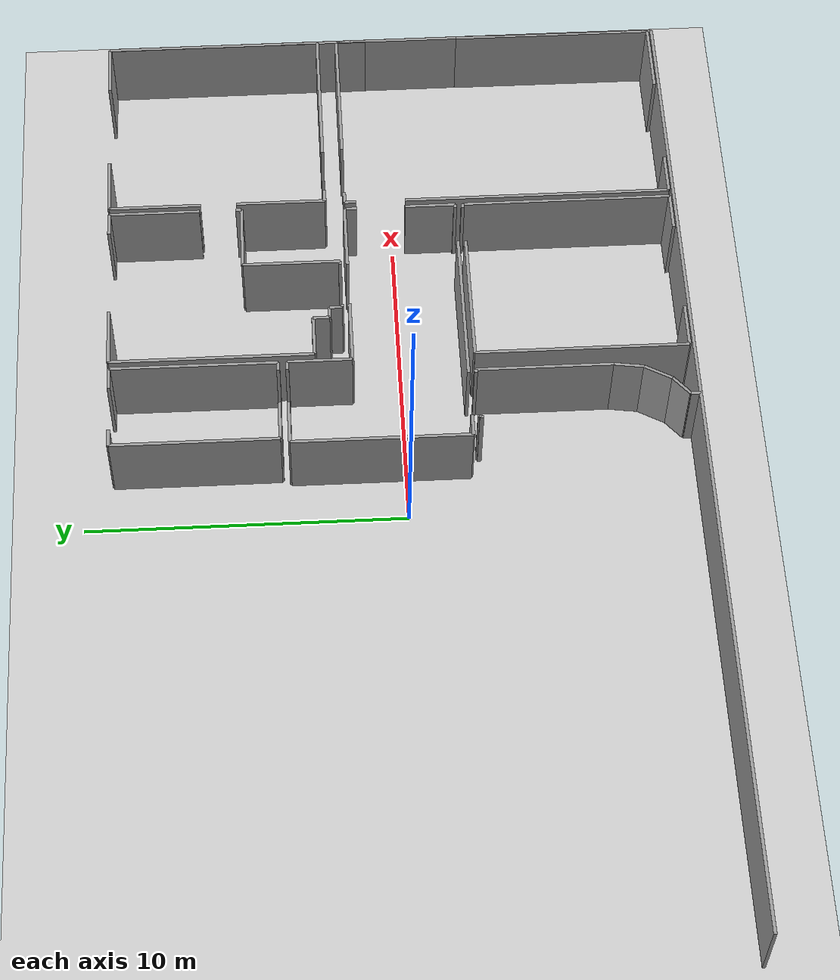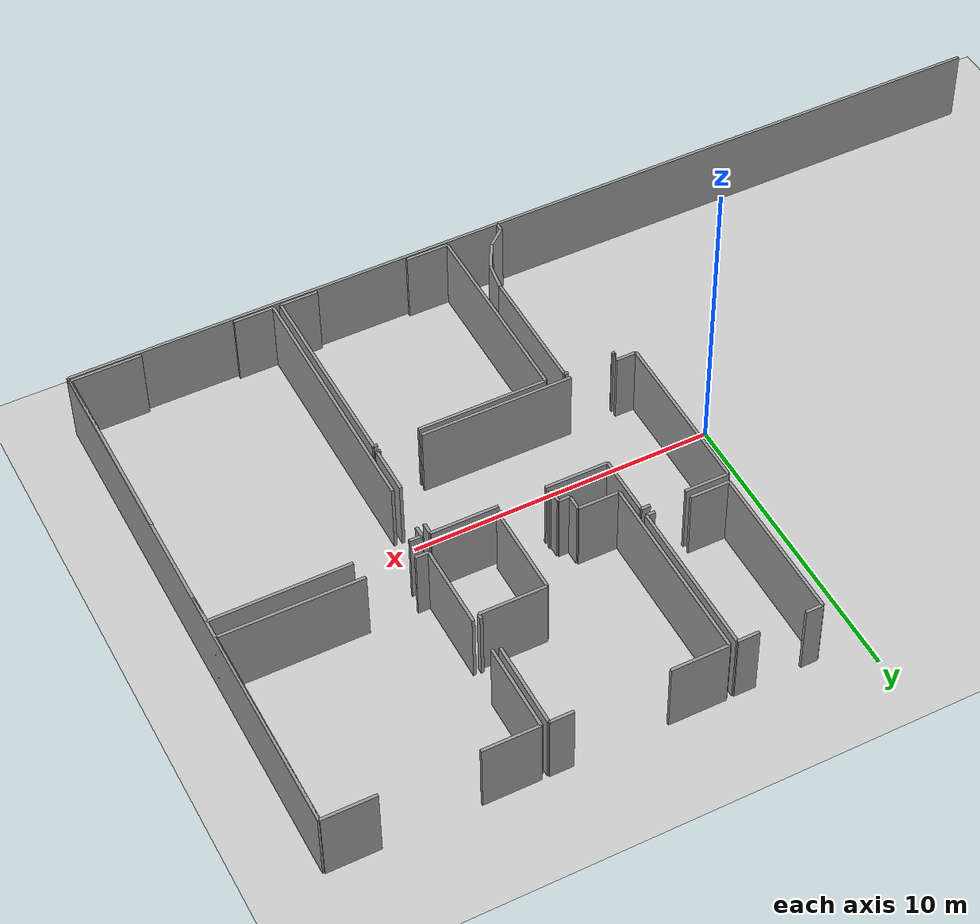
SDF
<sdf version="1.6">
 <world name="default">
  <model name="ground_plane">
   <static>1</static>
   <link name="link">
    <collision name="collision">
     <geometry><plane><normal>0 0 1</normal><size>100 100</size></plane></geometry>
     <surface><friction><ode><mu>100</mu><mu2>50</mu2></ode></friction></surface>
    </collision>
    <visual name="visual">
     <cast_shadows>0</cast_shadows>
     <geometry><plane><normal>0 0 1</normal><size>100 100</size></plane></geometry>
     <material>
      <script><uri>file://media/materials/scripts/gazebo.material</uri><name>Gazebo/Grey</name></script>
     </material>
    </visual>
   </link>
  </model>
  <model name="0510034860_A-40">
   <static>1</static>
   <link name="Wall_60">
    <collision name="Wall_60_Collision">
     <geometry><box><size>0.126208599707 0.1 2.5</size></box></geometry>
     <pose>0.0631042998534 0 1.25 0 0 0</pose>
    </collision>
    <visual name="Wall_60_Visual">
     <pose>0.0631042998534 0 1.25 0 0 0</pose>
     <geometry><box><size>0.126208599707 0.1 2.5</size></box></geometry>
     <material>
      <script><uri>file://media/materials/scripts/gazebo.material</uri><name>Gazebo/Grey</name></script>
      <ambient>1 1 1 1</ambient>
     </material>
    </visual>
    <pose>17.0286381787 -11.4423205114 0 0 0 1.57079632679</pose>
   </link>
   <link name="Wall_61">
    <collision name="Wall_61_Collision">
     <geometry><box><size>0.0822768336116 0.1 2.5</size></box></geometry>
     <pose>0.0411384168058 0 1.25 0 0 0</pose>
    </collision>
    <visual name="Wall_61_Visual">
     <pose>0.0411384168058 0 1.25 0 0 0</pose>
     <geometry><box><size>0.0822768336116 0.1 2.5</size></box></geometry>
     <material>
      <script><uri>file://media/materials/scripts/gazebo.material</uri><name>Gazebo/Grey</name></script>
      <ambient>1 1 1 1</ambient>
     </material>
    </visual>
    <pose>17.0286381787 -11.3161119117 0 0 0 0.0</pose>
   </link>
   <link name="Wall_62">
    <collision name="Wall_62_Collision">
     <geometry><box><size>0.12074887155 0.1 2.5</size></box></geometry>
     <pose>0.0603744357752 0 1.25 0 0 0</pose>
    </collision>
    <visual name="Wall_62_Visual">
     <pose>0.0603744357752 0 1.25 0 0 0</pose>
     <geometry><box><size>0.12074887155 0.1 2.5</size></box></geometry>
     <material>
      <script><uri>file://media/materials/scripts/gazebo.material</uri><name>Gazebo/Grey</name></script>
      <ambient>1 1 1 1</ambient>
     </material>
    </visual>
    <pose>18.648018944 -11.3161119117 0 0 0 0.0</pose>
   </link>
   <link name="Wall_63">
    <collision name="Wall_63_Collision">
     <geometry><box><size>4.26290495629 0.1 2.5</size></box></geometry>
     <pose>2.13145247815 0 1.25 0 0 0</pose>
    </collision>
    <visual name="Wall_63_Visual">
     <pose>2.13145247815 0 1.25 0 0 0</pose>
     <geometry><box><size>4.26290495629 0.1 2.5</size></box></geometry>
     <material>
      <script><uri>file://media/materials/scripts/gazebo.material</uri><name>Gazebo/Grey</name></script>
      <ambient>1 1 1 1</ambient>
     </material>
    </visual>
    <pose>18.7687678155 -11.3161119117 0 0 0 -1.57079632679</pose>
   </link>
   <link name="Wall_64">
    <collision name="Wall_64_Collision">
     <geometry><box><size>0.931540047163 0.1 2.5</size></box></geometry>
     <pose>0.465770023581 0 1.25 0 0 0</pose>
    </collision>
    <visual name="Wall_64_Visual">
     <pose>0.465770023581 0 1.25 0 0 0</pose>
     <geometry><box><size>0.931540047163 0.1 2.5</size></box></geometry>
     <material>
      <script><uri>file://media/materials/scripts/gazebo.material</uri><name>Gazebo/Grey</name></script>
      <ambient>1 1 1 1</ambient>
     </material>
    </visual>
    <pose>18.7687678155 -15.579016868 0 0 0 -1.71454387468</pose>
   </link>
   <link name="Wall_65">
    <collision name="Wall_65_Collision">
     <geometry><box><size>0.965415979738 0.1 2.5</size></box></geometry>
     <pose>0.482707989869 0 1.25 0 0 0</pose>
    </collision>
    <visual name="Wall_65_Visual">
     <pose>0.482707989869 0 1.25 0 0 0</pose>
     <geometry><box><size>0.965415979738 0.1 2.5</size></box></geometry>
     <material>
      <script><uri>file://media/materials/scripts/gazebo.material</uri><name>Gazebo/Grey</name></script>
      <ambient>1 1 1 1</ambient>
     </material>
    </visual>
    <pose>18.6353219018 -16.5009491039 0 0 0 -2.08157382126</pose>
   </link>
   <link name="Wall_66">
    <collision name="Wall_66_Collision">
     <geometry><box><size>0.767753355208 0.1 2.5</size></box></geometry>
     <pose>0.383876677604 0 1.25 0 0 0</pose>
    </collision>
    <visual name="Wall_66_Visual">
     <pose>0.383876677604 0 1.25 0 0 0</pose>
     <geometry><box><size>0.767753355208 0.1 2.5</size></box></geometry>
     <material>
      <script><uri>file://media/materials/scripts/gazebo.material</uri><name>Gazebo/Grey</name></script>
      <ambient>1 1 1 1</ambient>
     </material>
    </visual>
    <pose>18.1633728423 -17.3431439146 0 0 0 -2.44319115743</pose>
   </link>
   <link name="Wall_67">
    <collision name="Wall_67_Collision">
     <geometry><box><size>0.301167043313 0.1 2.5</size></box></geometry>
     <pose>0.150583521657 0 1.25 0 0 0</pose>
    </collision>
    <visual name="Wall_67_Visual">
     <pose>0.150583521657 0 1.25 0 0 0</pose>
     <geometry><box><size>0.301167043313 0.1 2.5</size></box></geometry>
     <material>
      <script><uri>file://media/materials/scripts/gazebo.material</uri><name>Gazebo/Grey</name></script>
      <ambient>1 1 1 1</ambient>
     </material>
    </visual>
    <pose>17.5753728169 -17.8368049163 0 0 0 -1.59904692776</pose>
   </link>
   <link name="Wall_68">
    <collision name="Wall_68_Collision">
     <geometry><box><size>0.115289143394 0.1 2.5</size></box></geometry>
     <pose>0.057644571697 0 1.25 0 0 0</pose>
    </collision>
    <visual name="Wall_68_Visual">
     <pose>0.057644571697 0 1.25 0 0 0</pose>
     <geometry><box><size>0.115289143394 0.1 2.5</size></box></geometry>
     <material>
      <script><uri>file://media/materials/scripts/gazebo.material</uri><name>Gazebo/Grey</name></script>
      <ambient>1 1 1 1</ambient>
     </material>
    </visual>
    <pose>25.1637601021 -11.0909933531 0 0 0 3.14159265359</pose>
   </link>
   <link name="Wall_69">
    <collision name="Wall_69_Collision">
     <geometry><box><size>5.0342502714 0.1 2.5</size></box></geometry>
     <pose>2.5171251357 0 1.25 0 0 0</pose>
    </collision>
    <visual name="Wall_69_Visual">
     <pose>2.5171251357 0 1.25 0 0 0</pose>
     <geometry><box><size>5.0342502714 0.1 2.5</size></box></geometry>
     <material>
      <script><uri>file://media/materials/scripts/gazebo.material</uri><name>Gazebo/Grey</name></script>
      <ambient>1 1 1 1</ambient>
     </material>
    </visual>
    <pose>23.7061396548 -11.0909933531 0 0 0 3.14159265359</pose>
   </link>
   <link name="Wall_70">
    <collision name="Wall_70_Collision">
     <geometry><box><size>0.691226978675 0.1 2.5</size></box></geometry>
     <pose>0.345613489338 0 1.25 0 0 0</pose>
    </collision>
    <visual name="Wall_70_Visual">
     <pose>0.345613489338 0 1.25 0 0 0</pose>
     <geometry><box><size>0.691226978675 0.1 2.5</size></box></geometry>
     <material>
      <script><uri>file://media/materials/scripts/gazebo.material</uri><name>Gazebo/Grey</name></script>
      <ambient>1 1 1 1</ambient>
     </material>
    </visual>
    <pose>17.1007573786 -11.0909933531 0 0 0 3.14159265359</pose>
   </link>
   <link name="Wall_71">
    <collision name="Wall_71_Collision">
     <geometry><box><size>5.57387456592 0.1 2.5</size></box></geometry>
     <pose>2.78693728296 0 1.25 0 0 0</pose>
    </collision>
    <visual name="Wall_71_Visual">
     <pose>2.78693728296 0 1.25 0 0 0</pose>
     <geometry><box><size>5.57387456592 0.1 2.5</size></box></geometry>
     <material>
      <script><uri>file://media/materials/scripts/gazebo.material</uri><name>Gazebo/Grey</name></script>
      <ambient>1 1 1 1</ambient>
     </material>
    </visual>
    <pose>16.4095303999 -11.0909933531 0 0 0 1.57079632679</pose>
   </link>
   <link name="Wall_72">
    <collision name="Wall_72_Collision">
     <geometry><box><size>1.44962131072 0.1 2.5</size></box></geometry>
     <pose>0.724810655358 0 1.25 0 0 0</pose>
    </collision>
    <visual name="Wall_72_Visual">
     <pose>0.724810655358 0 1.25 0 0 0</pose>
     <geometry><box><size>1.44962131072 0.1 2.5</size></box></geometry>
     <material>
      <script><uri>file://media/materials/scripts/gazebo.material</uri><name>Gazebo/Grey</name></script>
      <ambient>1 1 1 1</ambient>
     </material>
    </visual>
    <pose>16.4095303999 -5.51711878718 0 0 0 0.0</pose>
   </link>
   <link name="Wall_73">
    <collision name="Wall_73_Collision">
     <geometry><box><size>0.290889237352 0.1 2.5</size></box></geometry>
     <pose>0.145444618676 0 1.25 0 0 0</pose>
    </collision>
    <visual name="Wall_73_Visual">
     <pose>0.145444618676 0 1.25 0 0 0</pose>
     <geometry><box><size>0.290889237352 0.1 2.5</size></box></geometry>
     <material>
      <script><uri>file://media/materials/scripts/gazebo.material</uri><name>Gazebo/Grey</name></script>
      <ambient>1 1 1 1</ambient>
     </material>
    </visual>
    <pose>19.0487375966 -5.51711878718 0 0 0 0.0</pose>
   </link>
   <link name="Wall_74">
    <collision name="Wall_74_Collision">
     <geometry><box><size>2.02238488544 0.1 2.5</size></box></geometry>
     <pose>1.01119244272 0 1.25 0 0 0</pose>
    </collision>
    <visual name="Wall_74_Visual">
     <pose>1.01119244272 0 1.25 0 0 0</pose>
     <geometry><box><size>2.02238488544 0.1 2.5</size></box></geometry>
     <material>
      <script><uri>file://media/materials/scripts/gazebo.material</uri><name>Gazebo/Grey</name></script>
      <ambient>1 1 1 1</ambient>
     </material>
    </visual>
    <pose>19.3396268339 -5.51711878718 0 0 0 -1.57079632679</pose>
   </link>
   <link name="Wall_75">
    <collision name="Wall_75_Collision">
     <geometry><box><size>2.0804103684 0.1 2.5</size></box></geometry>
     <pose>1.0402051842 0 1.25 0 0 0</pose>
    </collision>
    <visual name="Wall_75_Visual">
     <pose>1.0402051842 0 1.25 0 0 0</pose>
     <geometry><box><size>2.0804103684 0.1 2.5</size></box></geometry>
     <material>
      <script><uri>file://media/materials/scripts/gazebo.material</uri><name>Gazebo/Grey</name></script>
      <ambient>1 1 1 1</ambient>
     </material>
    </visual>
    <pose>19.3396268339 -7.53950367262 0 0 0 0.0</pose>
   </link>
   <link name="Wall_76">
    <collision name="Wall_76_Collision">
     <geometry><box><size>2.19963559489 0.1 2.5</size></box></geometry>
     <pose>1.09981779744 0 1.25 0 0 0</pose>
    </collision>
    <visual name="Wall_76_Visual">
     <pose>1.09981779744 0 1.25 0 0 0</pose>
     <geometry><box><size>2.19963559489 0.1 2.5</size></box></geometry>
     <material>
      <script><uri>file://media/materials/scripts/gazebo.material</uri><name>Gazebo/Grey</name></script>
      <ambient>1 1 1 1</ambient>
     </material>
    </visual>
    <pose>22.96196601 -7.53950367262 0 0 0 0.0</pose>
   </link>
   <link name="Wall_77">
    <collision name="Wall_77_Collision">
     <geometry><box><size>0.387894639944 0.1 2.5</size></box></geometry>
     <pose>0.193947319972 0 1.25 0 0 0</pose>
    </collision>
    <visual name="Wall_77_Visual">
     <pose>0.193947319972 0 1.25 0 0 0</pose>
     <geometry><box><size>0.387894639944 0.1 2.5</size></box></geometry>
     <material>
      <script><uri>file://media/materials/scripts/gazebo.material</uri><name>Gazebo/Grey</name></script>
      <ambient>1 1 1 1</ambient>
     </material>
    </visual>
    <pose>25.1616016049 -7.53950367262 0 0 0 -1.57079632679</pose>
   </link>
   <link name="Wall_78">
    <collision name="Wall_78_Collision">
     <geometry><box><size>1.60160636065 0.1 2.5</size></box></geometry>
     <pose>0.800803180325 0 1.25 0 0 0</pose>
    </collision>
    <visual name="Wall_78_Visual">
     <pose>0.800803180325 0 1.25 0 0 0</pose>
     <geometry><box><size>1.60160636065 0.1 2.5</size></box></geometry>
     <material>
      <script><uri>file://media/materials/scripts/gazebo.material</uri><name>Gazebo/Grey</name></script>
      <ambient>1 1 1 1</ambient>
     </material>
    </visual>
    <pose>25.1616016049 -9.48938844696 0 0 0 -1.56944861872</pose>
   </link>
   <link name="Wall_79">
    <collision name="Wall_79_Collision">
     <geometry><box><size>1.2468495464 0.1 2.5</size></box></geometry>
     <pose>0.623424773199 0 1.25 0 0 0</pose>
    </collision>
    <visual name="Wall_79_Visual">
     <pose>0.623424773199 0 1.25 0 0 0</pose>
     <geometry><box><size>1.2468495464 0.1 2.5</size></box></geometry>
     <material>
      <script><uri>file://media/materials/scripts/gazebo.material</uri><name>Gazebo/Grey</name></script>
      <ambient>1 1 1 1</ambient>
     </material>
    </visual>
    <pose>25.1754413809 -18.0047867849 0 0 0 3.14159265359</pose>
   </link>
   <link name="Wall_80">
    <collision name="Wall_80_Collision">
     <geometry><box><size>1.43819397271 0.1 2.5</size></box></geometry>
     <pose>0.719096986357 0 1.25 0 0 0</pose>
    </collision>
    <visual name="Wall_80_Visual">
     <pose>0.719096986357 0 1.25 0 0 0</pose>
     <geometry><box><size>1.43819397271 0.1 2.5</size></box></geometry>
     <material>
      <script><uri>file://media/materials/scripts/gazebo.material</uri><name>Gazebo/Grey</name></script>
      <ambient>1 1 1 1</ambient>
     </material>
    </visual>
    <pose>20.8381317572 -18.0047867849 0 0 0 3.14159265359</pose>
   </link>
   <link name="Wall_81">
    <collision name="Wall_81_Collision">
     <geometry><box><size>6.67191477745 0.1 2.5</size></box></geometry>
     <pose>3.33595738873 0 1.25 0 0 0</pose>
    </collision>
    <visual name="Wall_81_Visual">
     <pose>3.33595738873 0 1.25 0 0 0</pose>
     <geometry><box><size>6.67191477745 0.1 2.5</size></box></geometry>
     <material>
      <script><uri>file://media/materials/scripts/gazebo.material</uri><name>Gazebo/Grey</name></script>
      <ambient>1 1 1 1</ambient>
     </material>
    </visual>
    <pose>19.3999377845 -18.0047867849 0 0 0 1.57079632679</pose>
   </link>
   <link name="Wall_82">
    <collision name="Wall_82_Collision">
     <geometry><box><size>4.28867995201 0.1 2.5</size></box></geometry>
     <pose>2.144339976 0 1.25 0 0 0</pose>
    </collision>
    <visual name="Wall_82_Visual">
     <pose>2.144339976 0 1.25 0 0 0</pose>
     <geometry><box><size>4.28867995201 0.1 2.5</size></box></geometry>
     <material>
      <script><uri>file://media/materials/scripts/gazebo.material</uri><name>Gazebo/Grey</name></script>
      <ambient>1 1 1 1</ambient>
     </material>
    </visual>
    <pose>19.3999377845 -11.3328720075 0 0 0 0.0</pose>
   </link>
   <link name="Wall_83">
    <collision name="Wall_83_Collision">
     <geometry><box><size>0.126335570129 0.1 2.5</size></box></geometry>
     <pose>0.0631677850645 0 1.25 0 0 0</pose>
    </collision>
    <visual name="Wall_83_Visual">
     <pose>0.0631677850645 0 1.25 0 0 0</pose>
     <geometry><box><size>0.126335570129 0.1 2.5</size></box></geometry>
     <material>
      <script><uri>file://media/materials/scripts/gazebo.material</uri><name>Gazebo/Grey</name></script>
      <ambient>1 1 1 1</ambient>
     </material>
    </visual>
    <pose>25.037424532 -11.3328720075 0 0 0 0.0</pose>
   </link>
   <link name="Wall_84">
    <collision name="Wall_84_Collision">
     <geometry><box><size>6.67192500332 0.1 2.5</size></box></geometry>
     <pose>3.33596250166 0 1.25 0 0 0</pose>
    </collision>
    <visual name="Wall_84_Visual">
     <pose>3.33596250166 0 1.25 0 0 0</pose>
     <geometry><box><size>6.67192500332 0.1 2.5</size></box></geometry>
     <material>
      <script><uri>file://media/materials/scripts/gazebo.material</uri><name>Gazebo/Grey</name></script>
      <ambient>1 1 1 1</ambient>
     </material>
    </visual>
    <pose>25.1637601021 -11.3328720075 0 0 0 -1.56904551503</pose>
   </link>
   <link name="Wall_85">
    <collision name="Wall_85_Collision">
     <geometry><box><size>2.31035380308 0.1 2.5</size></box></geometry>
     <pose>1.15517690154 0 1.25 0 0 0</pose>
    </collision>
    <visual name="Wall_85_Visual">
     <pose>1.15517690154 0 1.25 0 0 0</pose>
     <geometry><box><size>2.31035380308 0.1 2.5</size></box></geometry>
     <material>
      <script><uri>file://media/materials/scripts/gazebo.material</uri><name>Gazebo/Grey</name></script>
      <ambient>1 1 1 1</ambient>
     </material>
    </visual>
    <pose>32.1364678098 -18.0052946666 0 0 0 3.14159265359</pose>
   </link>
   <link name="Wall_86">
    <collision name="Wall_86_Collision">
     <geometry><box><size>1.34461677152 0.1 2.5</size></box></geometry>
     <pose>0.672308385762 0 1.25 0 0 0</pose>
    </collision>
    <visual name="Wall_86_Visual">
     <pose>0.672308385762 0 1.25 0 0 0</pose>
     <geometry><box><size>1.34461677152 0.1 2.5</size></box></geometry>
     <material>
      <script><uri>file://media/materials/scripts/gazebo.material</uri><name>Gazebo/Grey</name></script>
      <ambient>1 1 1 1</ambient>
     </material>
    </visual>
    <pose>26.7644762153 -18.0052946666 0 0 0 3.14159265359</pose>
   </link>
   <link name="Wall_87">
    <collision name="Wall_87_Collision">
     <geometry><box><size>8.5076531422 0.1 2.5</size></box></geometry>
     <pose>4.2538265711 0 1.25 0 0 0</pose>
    </collision>
    <visual name="Wall_87_Visual">
     <pose>4.2538265711 0 1.25 0 0 0</pose>
     <geometry><box><size>8.5076531422 0.1 2.5</size></box></geometry>
     <material>
      <script><uri>file://media/materials/scripts/gazebo.material</uri><name>Gazebo/Grey</name></script>
      <ambient>1 1 1 1</ambient>
     </material>
    </visual>
    <pose>25.4198594437 -18.0052946666 0 0 0 1.57079632679</pose>
   </link>
   <link name="Wall_88">
    <collision name="Wall_88_Collision">
     <geometry><box><size>0.363008437185 0.1 2.5</size></box></geometry>
     <pose>0.181504218592 0 1.25 0 0 0</pose>
    </collision>
    <visual name="Wall_88_Visual">
     <pose>0.181504218592 0 1.25 0 0 0</pose>
     <geometry><box><size>0.363008437185 0.1 2.5</size></box></geometry>
     <material>
      <script><uri>file://media/materials/scripts/gazebo.material</uri><name>Gazebo/Grey</name></script>
      <ambient>1 1 1 1</ambient>
     </material>
    </visual>
    <pose>25.4198594437 -7.9201609985 0 0 0 1.57079632679</pose>
   </link>
   <link name="Wall_89">
    <collision name="Wall_89_Collision">
     <geometry><box><size>0.409606582147 0.1 2.5</size></box></geometry>
     <pose>0.204803291073 0 1.25 0 0 0</pose>
    </collision>
    <visual name="Wall_89_Visual">
     <pose>0.204803291073 0 1.25 0 0 0</pose>
     <geometry><box><size>0.409606582147 0.1 2.5</size></box></geometry>
     <material>
      <script><uri>file://media/materials/scripts/gazebo.material</uri><name>Gazebo/Grey</name></script>
      <ambient>1 1 1 1</ambient>
     </material>
    </visual>
    <pose>25.4198594437 -7.55715256131 0 0 0 0.0</pose>
   </link>
   <link name="Wall_90">
    <collision name="Wall_90_Collision">
     <geometry><box><size>4.54452535282 0.1 2.5</size></box></geometry>
     <pose>2.27226267641 0 1.25 0 0 0</pose>
    </collision>
    <visual name="Wall_90_Visual">
     <pose>2.27226267641 0 1.25 0 0 0</pose>
     <geometry><box><size>4.54452535282 0.1 2.5</size></box></geometry>
     <material>
      <script><uri>file://media/materials/scripts/gazebo.material</uri><name>Gazebo/Grey</name></script>
      <ambient>1 1 1 1</ambient>
     </material>
    </visual>
    <pose>27.6008303866 -7.55715256131 0 0 0 0.0</pose>
   </link>
   <link name="Wall_91">
    <collision name="Wall_91_Collision">
     <geometry><box><size>0.958372747069 0.1 2.5</size></box></geometry>
     <pose>0.479186373534 0 1.25 0 0 0</pose>
    </collision>
    <visual name="Wall_91_Visual">
     <pose>0.479186373534 0 1.25 0 0 0</pose>
     <geometry><box><size>0.958372747069 0.1 2.5</size></box></geometry>
     <material>
      <script><uri>file://media/materials/scripts/gazebo.material</uri><name>Gazebo/Grey</name></script>
      <ambient>1 1 1 1</ambient>
     </material>
    </visual>
    <pose>32.1453557394 -7.55715256131 0 0 0 -1.57079632679</pose>
   </link>
   <link name="Wall_92">
    <collision name="Wall_92_Collision">
     <geometry><box><size>6.43359743419 0.1 2.5</size></box></geometry>
     <pose>3.21679871709 0 1.25 0 0 0</pose>
    </collision>
    <visual name="Wall_92_Visual">
     <pose>3.21679871709 0 1.25 0 0 0</pose>
     <geometry><box><size>6.43359743419 0.1 2.5</size></box></geometry>
     <material>
      <script><uri>file://media/materials/scripts/gazebo.material</uri><name>Gazebo/Grey</name></script>
      <ambient>1 1 1 1</ambient>
     </material>
    </visual>
    <pose>32.1453557394 -11.5717033717 0 0 0 -1.57217781398</pose>
   </link>
   <link name="Wall_93">
    <collision name="Wall_93_Collision">
     <geometry><box><size>4.65181535961 0.1 2.5</size></box></geometry>
     <pose>2.32590767981 0 1.25 0 0 0</pose>
    </collision>
    <visual name="Wall_93_Visual">
     <pose>2.32590767981 0 1.25 0 0 0</pose>
     <geometry><box><size>4.65181535961 0.1 2.5</size></box></geometry>
     <material>
      <script><uri>file://media/materials/scripts/gazebo.material</uri><name>Gazebo/Grey</name></script>
      <ambient>1 1 1 1</ambient>
     </material>
    </visual>
    <pose>32.1547515506 -6.91887224871 0 0 0 3.14159265359</pose>
   </link>
   <link name="Wall_94">
    <collision name="Wall_94_Collision">
     <geometry><box><size>0.434111873639 0.1 2.5</size></box></geometry>
     <pose>0.21705593682 0 1.25 0 0 0</pose>
    </collision>
    <visual name="Wall_94_Visual">
     <pose>0.21705593682 0 1.25 0 0 0</pose>
     <geometry><box><size>0.434111873639 0.1 2.5</size></box></geometry>
     <material>
      <script><uri>file://media/materials/scripts/gazebo.material</uri><name>Gazebo/Grey</name></script>
      <ambient>1 1 1 1</ambient>
     </material>
    </visual>
    <pose>25.9518655129 -6.91887224871 0 0 0 3.14159265359</pose>
   </link>
   <link name="Wall_95">
    <collision name="Wall_95_Collision">
     <geometry><box><size>2.83931258213 0.1 2.5</size></box></geometry>
     <pose>1.41965629107 0 1.25 0 0 0</pose>
    </collision>
    <visual name="Wall_95_Visual">
     <pose>1.41965629107 0 1.25 0 0 0</pose>
     <geometry><box><size>2.83931258213 0.1 2.5</size></box></geometry>
     <material>
      <script><uri>file://media/materials/scripts/gazebo.material</uri><name>Gazebo/Grey</name></script>
      <ambient>1 1 1 1</ambient>
     </material>
    </visual>
    <pose>25.5177536393 -6.91887224871 0 0 0 1.57079632679</pose>
   </link>
   <link name="Wall_96">
    <collision name="Wall_96_Collision">
     <geometry><box><size>2.92197032701 0.1 2.5</size></box></geometry>
     <pose>1.46098516351 0 1.25 0 0 0</pose>
    </collision>
    <visual name="Wall_96_Visual">
     <pose>1.46098516351 0 1.25 0 0 0</pose>
     <geometry><box><size>2.92197032701 0.1 2.5</size></box></geometry>
     <material>
      <script><uri>file://media/materials/scripts/gazebo.material</uri><name>Gazebo/Grey</name></script>
      <ambient>1 1 1 1</ambient>
     </material>
    </visual>
    <pose>25.5177536393 -2.93581010304 0 0 0 1.57079632679</pose>
   </link>
   <link name="Wall_97">
    <collision name="Wall_97_Collision">
     <geometry><box><size>1.84500720557 0.1 2.5</size></box></geometry>
     <pose>0.922503602786 0 1.25 0 0 0</pose>
    </collision>
    <visual name="Wall_97_Visual">
     <pose>0.922503602786 0 1.25 0 0 0</pose>
     <geometry><box><size>1.84500720557 0.1 2.5</size></box></geometry>
     <material>
      <script><uri>file://media/materials/scripts/gazebo.material</uri><name>Gazebo/Grey</name></script>
      <ambient>1 1 1 1</ambient>
     </material>
    </visual>
    <pose>25.5177536393 -0.0138397760242 0 0 0 0.0</pose>
   </link>
   <link name="Wall_98">
    <collision name="Wall_98_Collision">
     <geometry><box><size>1.71968739882 0.1 2.5</size></box></geometry>
     <pose>0.85984369941 0 1.25 0 0 0</pose>
    </collision>
    <visual name="Wall_98_Visual">
     <pose>0.85984369941 0 1.25 0 0 0</pose>
     <geometry><box><size>1.71968739882 0.1 2.5</size></box></geometry>
     <material>
      <script><uri>file://media/materials/scripts/gazebo.material</uri><name>Gazebo/Grey</name></script>
      <ambient>1 1 1 1</ambient>
     </material>
    </visual>
    <pose>30.4266841039 -0.0138397760242 0 0 0 0.0</pose>
   </link>
   <link name="Wall_99">
    <collision name="Wall_99_Collision">
     <geometry><box><size>6.90503755776 0.1 2.5</size></box></geometry>
     <pose>3.45251877888 0 1.25 0 0 0</pose>
    </collision>
    <visual name="Wall_99_Visual">
     <pose>3.45251877888 0 1.25 0 0 0</pose>
     <geometry><box><size>6.90503755776 0.1 2.5</size></box></geometry>
     <material>
      <script><uri>file://media/materials/scripts/gazebo.material</uri><name>Gazebo/Grey</name></script>
      <ambient>1 1 1 1</ambient>
     </material>
    </visual>
    <pose>32.1463715028 -0.0138397760242 0 0 0 -1.56958271284</pose>
   </link>
   <link name="Wall_100">
    <collision name="Wall_100_Collision">
     <geometry><box><size>0.132557120819 0.1 2.5</size></box></geometry>
     <pose>0.0662785604094 0 1.25 0 0 0</pose>
    </collision>
    <visual name="Wall_100_Visual">
     <pose>0.0662785604094 0 1.25 0 0 0</pose>
     <geometry><box><size>0.132557120819 0.1 2.5</size></box></geometry>
     <material>
      <script><uri>file://media/materials/scripts/gazebo.material</uri><name>Gazebo/Grey</name></script>
      <ambient>1 1 1 1</ambient>
     </material>
    </visual>
    <pose>23.0904600773 -7.3115917647 0 0 0 3.14159265359</pose>
   </link>
   <link name="Wall_101">
    <collision name="Wall_101_Collision">
     <geometry><box><size>0.100179663147 0.1 2.5</size></box></geometry>
     <pose>0.0500898315737 0 1.25 0 0 0</pose>
    </collision>
    <visual name="Wall_101_Visual">
     <pose>0.0500898315737 0 1.25 0 0 0</pose>
     <geometry><box><size>0.100179663147 0.1 2.5</size></box></geometry>
     <material>
      <script><uri>file://media/materials/scripts/gazebo.material</uri><name>Gazebo/Grey</name></script>
      <ambient>1 1 1 1</ambient>
     </material>
    </visual>
    <pose>21.4186405277 -7.3115917647 0 0 0 3.14159265359</pose>
   </link>
   <link name="Wall_102">
    <collision name="Wall_102_Collision">
     <geometry><box><size>0.410241434258 0.1 2.5</size></box></geometry>
     <pose>0.205120717129 0 1.25 0 0 0</pose>
    </collision>
    <visual name="Wall_102_Visual">
     <pose>0.205120717129 0 1.25 0 0 0</pose>
     <geometry><box><size>0.410241434258 0.1 2.5</size></box></geometry>
     <material>
      <script><uri>file://media/materials/scripts/gazebo.material</uri><name>Gazebo/Grey</name></script>
      <ambient>1 1 1 1</ambient>
     </material>
    </visual>
    <pose>21.3184608645 -7.3115917647 0 0 0 1.57079632679</pose>
   </link>
   <link name="Wall_103">
    <collision name="Wall_103_Collision">
     <geometry><box><size>0.375705479409 0.1 2.5</size></box></geometry>
     <pose>0.187852739704 0 1.25 0 0 0</pose>
    </collision>
    <visual name="Wall_103_Visual">
     <pose>0.187852739704 0 1.25 0 0 0</pose>
     <geometry><box><size>0.375705479409 0.1 2.5</size></box></geometry>
     <material>
      <script><uri>file://media/materials/scripts/gazebo.material</uri><name>Gazebo/Grey</name></script>
      <ambient>1 1 1 1</ambient>
     </material>
    </visual>
    <pose>21.3184608645 -6.90135033044 0 0 0 3.14159265359</pose>
   </link>
   <link name="Wall_104">
    <collision name="Wall_104_Collision">
     <geometry><box><size>0.517658411473 0.1 2.5</size></box></geometry>
     <pose>0.258829205737 0 1.25 0 0 0</pose>
    </collision>
    <visual name="Wall_104_Visual">
     <pose>0.258829205737 0 1.25 0 0 0</pose>
     <geometry><box><size>0.517658411473 0.1 2.5</size></box></geometry>
     <material>
      <script><uri>file://media/materials/scripts/gazebo.material</uri><name>Gazebo/Grey</name></script>
      <ambient>1 1 1 1</ambient>
     </material>
    </visual>
    <pose>20.9427553851 -6.90135033044 0 0 0 1.57079632679</pose>
   </link>
   <link name="Wall_105">
    <collision name="Wall_105_Collision">
     <geometry><box><size>1.35617107995 0.1 2.5</size></box></geometry>
     <pose>0.678085539973 0 1.25 0 0 0</pose>
    </collision>
    <visual name="Wall_105_Visual">
     <pose>0.678085539973 0 1.25 0 0 0</pose>
     <geometry><box><size>1.35617107995 0.1 2.5</size></box></geometry>
     <material>
      <script><uri>file://media/materials/scripts/gazebo.material</uri><name>Gazebo/Grey</name></script>
      <ambient>1 1 1 1</ambient>
     </material>
    </visual>
    <pose>20.9427553851 -6.38369191897 0 0 0 3.14159265359</pose>
   </link>
   <link name="Wall_106">
    <collision name="Wall_106_Collision">
     <geometry><box><size>6.37581975279 0.1 2.5</size></box></geometry>
     <pose>3.18790987639 0 1.25 0 0 0</pose>
    </collision>
    <visual name="Wall_106_Visual">
     <pose>3.18790987639 0 1.25 0 0 0</pose>
     <geometry><box><size>6.37581975279 0.1 2.5</size></box></geometry>
     <material>
      <script><uri>file://media/materials/scripts/gazebo.material</uri><name>Gazebo/Grey</name></script>
      <ambient>1 1 1 1</ambient>
     </material>
    </visual>
    <pose>19.5865843052 -6.38369191897 0 0 0 1.57079632679</pose>
   </link>
   <link name="Wall_107">
    <collision name="Wall_107_Collision">
     <geometry><box><size>1.89414475898 0.1 2.5</size></box></geometry>
     <pose>0.947072379489 0 1.25 0 0 0</pose>
    </collision>
    <visual name="Wall_107_Visual">
     <pose>0.947072379489 0 1.25 0 0 0</pose>
     <geometry><box><size>1.89414475898 0.1 2.5</size></box></geometry>
     <material>
      <script><uri>file://media/materials/scripts/gazebo.material</uri><name>Gazebo/Grey</name></script>
      <ambient>1 1 1 1</ambient>
     </material>
    </visual>
    <pose>19.5865843052 -0.00787216617889 0 0 0 0.0</pose>
   </link>
   <link name="Wall_108">
    <collision name="Wall_108_Collision">
     <geometry><box><size>0.776424131998 0.1 2.5</size></box></geometry>
     <pose>0.388212065999 0 1.25 0 0 0</pose>
    </collision>
    <visual name="Wall_108_Visual">
     <pose>0.388212065999 0 1.25 0 0 0</pose>
     <geometry><box><size>0.776424131998 0.1 2.5</size></box></geometry>
     <material>
      <script><uri>file://media/materials/scripts/gazebo.material</uri><name>Gazebo/Grey</name></script>
      <ambient>1 1 1 1</ambient>
     </material>
    </visual>
    <pose>24.5045296698 -0.00787216617889 0 0 0 0.0</pose>
   </link>
   <link name="Wall_109">
    <collision name="Wall_109_Collision">
     <geometry><box><size>2.88616466794 0.1 2.5</size></box></geometry>
     <pose>1.44308233397 0 1.25 0 0 0</pose>
    </collision>
    <visual name="Wall_109_Visual">
     <pose>1.44308233397 0 1.25 0 0 0</pose>
     <geometry><box><size>2.88616466794 0.1 2.5</size></box></geometry>
     <material>
      <script><uri>file://media/materials/scripts/gazebo.material</uri><name>Gazebo/Grey</name></script>
      <ambient>1 1 1 1</ambient>
     </material>
    </visual>
    <pose>25.2809538018 -0.00787216617889 0 0 0 -1.57079632679</pose>
   </link>
   <link name="Wall_110">
    <collision name="Wall_110_Collision">
     <geometry><box><size>0.183726200981 0.1 2.5</size></box></geometry>
     <pose>0.0918631004907 0 1.25 0 0 0</pose>
    </collision>
    <visual name="Wall_110_Visual">
     <pose>0.0918631004907 0 1.25 0 0 0</pose>
     <geometry><box><size>0.183726200981 0.1 2.5</size></box></geometry>
     <material>
      <script><uri>file://media/materials/scripts/gazebo.material</uri><name>Gazebo/Grey</name></script>
      <ambient>1 1 1 1</ambient>
     </material>
    </visual>
    <pose>25.2809538018 -4.05441952297 0 0 0 -1.57079632679</pose>
   </link>
   <link name="Wall_111">
    <collision name="Wall_111_Collision">
     <geometry><box><size>2.18414520337 0.1 2.5</size></box></geometry>
     <pose>1.09207260169 0 1.25 0 0 0</pose>
    </collision>
    <visual name="Wall_111_Visual">
     <pose>1.09207260169 0 1.25 0 0 0</pose>
     <geometry><box><size>2.18414520337 0.1 2.5</size></box></geometry>
     <material>
      <script><uri>file://media/materials/scripts/gazebo.material</uri><name>Gazebo/Grey</name></script>
      <ambient>1 1 1 1</ambient>
     </material>
    </visual>
    <pose>25.2809538018 -4.23814572395 0 0 0 3.14159265359</pose>
   </link>
   <link name="Wall_112">
    <collision name="Wall_112_Collision">
     <geometry><box><size>3.0734525975 0.1 2.5</size></box></geometry>
     <pose>1.53672629875 0 1.25 0 0 0</pose>
    </collision>
    <visual name="Wall_112_Visual">
     <pose>1.53672629875 0 1.25 0 0 0</pose>
     <geometry><box><size>3.0734525975 0.1 2.5</size></box></geometry>
     <material>
      <script><uri>file://media/materials/scripts/gazebo.material</uri><name>Gazebo/Grey</name></script>
      <ambient>1 1 1 1</ambient>
     </material>
    </visual>
    <pose>23.0968085984 -4.23814572395 0 0 0 -1.57286192743</pose>
   </link>
   <link name="Wall_113">
    <collision name="Wall_113_Collision">
     <geometry><box><size>0.28225524864 0.1 2.5</size></box></geometry>
     <pose>0.14112762432 0 1.25 0 0 0</pose>
    </collision>
    <visual name="Wall_113_Visual">
     <pose>0.14112762432 0 1.25 0 0 0</pose>
     <geometry><box><size>0.28225524864 0.1 2.5</size></box></geometry>
     <material>
      <script><uri>file://media/materials/scripts/gazebo.material</uri><name>Gazebo/Grey</name></script>
      <ambient>1 1 1 1</ambient>
     </material>
    </visual>
    <pose>19.3257870579 -5.23613324276 0 0 0 3.14159265359</pose>
   </link>
   <link name="Wall_114">
    <collision name="Wall_114_Collision">
     <geometry><box><size>1.3067795857 0.1 2.5</size></box></geometry>
     <pose>0.653389792848 0 1.25 0 0 0</pose>
    </collision>
    <visual name="Wall_114_Visual">
     <pose>0.653389792848 0 1.25 0 0 0</pose>
     <geometry><box><size>1.3067795857 0.1 2.5</size></box></geometry>
     <material>
      <script><uri>file://media/materials/scripts/gazebo.material</uri><name>Gazebo/Grey</name></script>
      <ambient>1 1 1 1</ambient>
     </material>
    </visual>
    <pose>17.8512795444 -5.23613324276 0 0 0 3.14159265359</pose>
   </link>
   <link name="Wall_115">
    <collision name="Wall_115_Collision">
     <geometry><box><size>5.21442130056 0.1 2.5</size></box></geometry>
     <pose>2.60721065028 0 1.25 0 0 0</pose>
    </collision>
    <visual name="Wall_115_Visual">
     <pose>2.60721065028 0 1.25 0 0 0</pose>
     <geometry><box><size>5.21442130056 0.1 2.5</size></box></geometry>
     <material>
      <script><uri>file://media/materials/scripts/gazebo.material</uri><name>Gazebo/Grey</name></script>
      <ambient>1 1 1 1</ambient>
     </material>
    </visual>
    <pose>16.5444999587 -5.23613324276 0 0 0 1.57079632679</pose>
   </link>
   <link name="Wall_116">
    <collision name="Wall_116_Collision">
     <geometry><box><size>0.566288083191 0.1 2.5</size></box></geometry>
     <pose>0.283144041596 0 1.25 0 0 0</pose>
    </collision>
    <visual name="Wall_116_Visual">
     <pose>0.283144041596 0 1.25 0 0 0</pose>
     <geometry><box><size>0.566288083191 0.1 2.5</size></box></geometry>
     <material>
      <script><uri>file://media/materials/scripts/gazebo.material</uri><name>Gazebo/Grey</name></script>
      <ambient>1 1 1 1</ambient>
     </material>
    </visual>
    <pose>16.5444999587 -0.0217119422031 0 0 0 0.0</pose>
   </link>
   <link name="Wall_117">
    <collision name="Wall_117_Collision">
     <geometry><box><size>0.713319832145 0.1 2.5</size></box></geometry>
     <pose>0.356659916073 0 1.25 0 0 0</pose>
    </collision>
    <visual name="Wall_117_Visual">
     <pose>0.356659916073 0 1.25 0 0 0</pose>
     <geometry><box><size>0.713319832145 0.1 2.5</size></box></geometry>
     <material>
      <script><uri>file://media/materials/scripts/gazebo.material</uri><name>Gazebo/Grey</name></script>
      <ambient>1 1 1 1</ambient>
     </material>
    </visual>
    <pose>18.6211012145 -0.0217119422031 0 0 0 0.0</pose>
   </link>
   <link name="Wall_118">
    <collision name="Wall_118_Collision">
     <geometry><box><size>5.21442844859 0.1 2.5</size></box></geometry>
     <pose>2.6072142243 0 1.25 0 0 0</pose>
    </collision>
    <visual name="Wall_118_Visual">
     <pose>2.6072142243 0 1.25 0 0 0</pose>
     <geometry><box><size>5.21442844859 0.1 2.5</size></box></geometry>
     <material>
      <script><uri>file://media/materials/scripts/gazebo.material</uri><name>Gazebo/Grey</name></script>
      <ambient>1 1 1 1</ambient>
     </material>
    </visual>
    <pose>19.3344210466 -0.0217119422031 0 0 0 -1.57245211568</pose>
   </link>
   <link name="Wall_119">
    <collision name="Wall_119_Collision">
     <geometry><box><size>18.1378517874 0.1 2.5</size></box></geometry>
     <pose>9.06892589371 0 1.25 0 0 0</pose>
    </collision>
    <visual name="Wall_119_Visual">
     <pose>9.06892589371 0 1.25 0 0 0</pose>
     <geometry><box><size>18.1378517874 0.1 2.5</size></box></geometry>
     <material>
      <script><uri>file://media/materials/scripts/gazebo.material</uri><name>Gazebo/Grey</name></script>
      <ambient>1 1 1 1</ambient>
     </material>
    </visual>
    <pose>32.1547515506 -18.1378517874 0 0 0 1.57079632679</pose>
   </link>
   <link name="Wall_120">
    <collision name="Wall_120_Collision">
     <geometry><box><size>32.1547515506 0.1 2.5</size></box></geometry>
     <pose>16.0773757753 0 1.25 0 0 0</pose>
    </collision>
    <visual name="Wall_120_Visual">
     <pose>16.0773757753 0 1.25 0 0 0</pose>
     <geometry><box><size>32.1547515506 0.1 2.5</size></box></geometry>
     <material>
      <script><uri>file://media/materials/scripts/gazebo.material</uri><name>Gazebo/Grey</name></script>
      <ambient>1 1 1 1</ambient>
     </material>
    </visual>
    <pose>32.1547515506 -18.1378517874 0 0 0 3.14159265359</pose>
   </link>
   <pose>-15.0 9.08785178743 0 0 0 0</pose>
  </model>
 </world>
</sdf>
